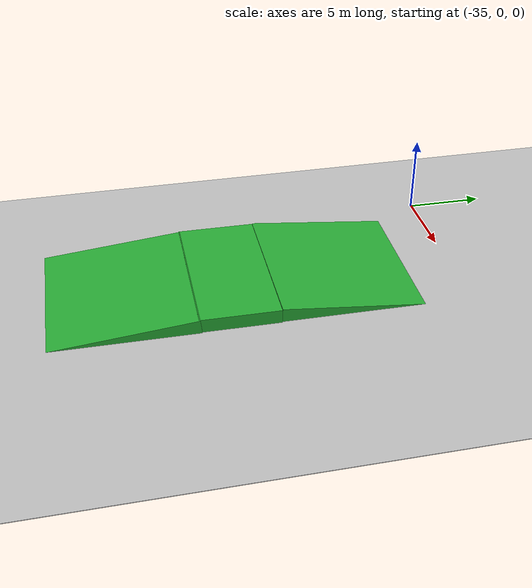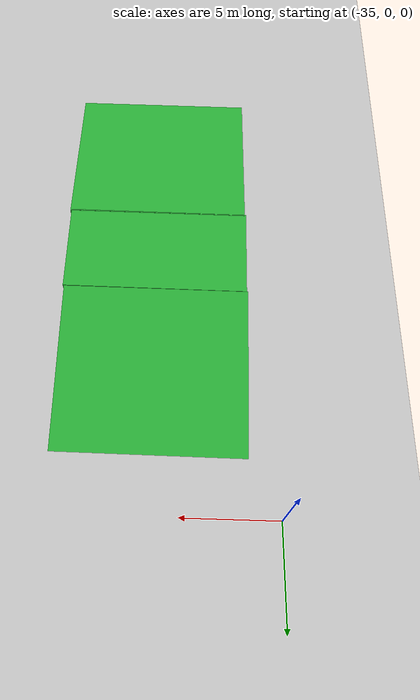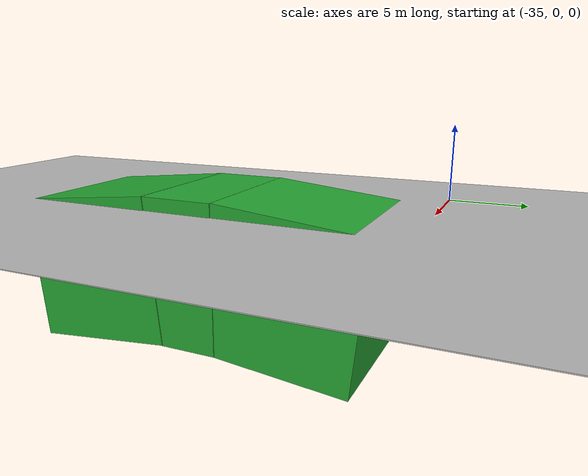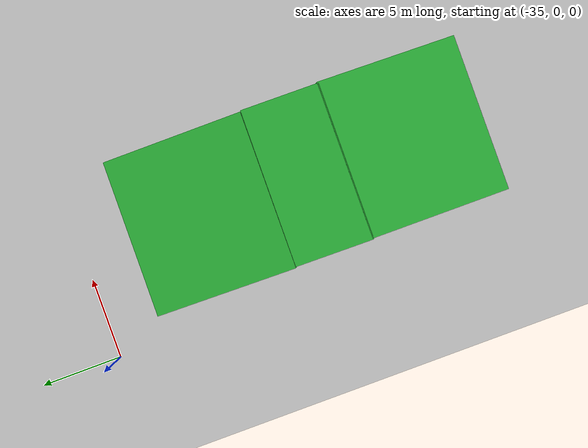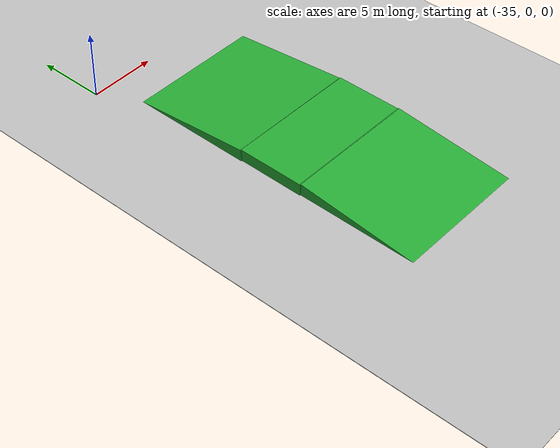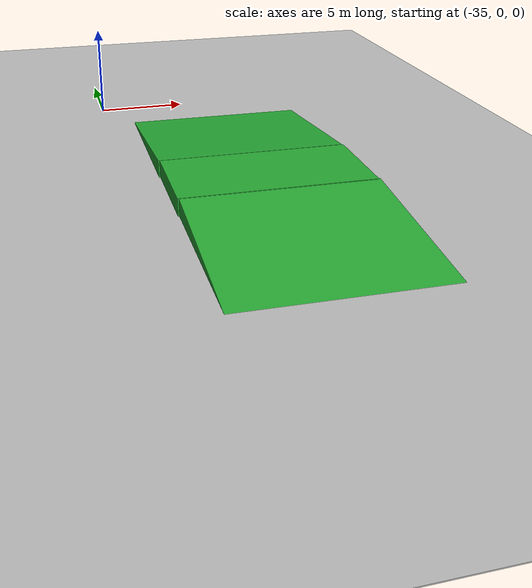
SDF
<sdf version="1.6">
 <world name="default">
  <include><uri>model://sun</uri></include>
  <model name="ground">
   <static>1</static>
   <link name="ground">
    <collision name="ground_coll"><geometry><box><size>83.6 150  0.05</size></box></geometry></collision>
    <visual name="ground_vis">
     <geometry><box><size>83.6 150  0.05</size></box></geometry>
     <material><script><uri>./course.material</uri><name>course</name></script></material>
    </visual>
   </link>
  </model>
  <model name="up_road">
   <pose>-28.5 -7.5 -4.55 0.0 -0.1 -1.58</pose>
   <static>1</static>
   <link name="link">
    <collision name="collision"><geometry><box><size>10 10 10</size></box></geometry></collision>
    <visual name="visual">
     <geometry><box><size>10 10 10</size></box></geometry>
     <material>
      <script><uri>file://media/materials/scripts/gazebo.material</uri><name>Gazebo/Green</name></script>
     </material>
    </visual>
   </link>
  </model>
  <model name="flat_road">
   <pose>-28.5 -14.5 -4.08 0.0 0.0 1.56</pose>
   <static>1</static>
   <link name="link">
    <collision name="collision"><geometry><box><size>5 10 10</size></box></geometry></collision>
    <visual name="visual">
     <geometry><box><size>5 10 10</size></box></geometry>
     <material>
      <script><uri>file://media/materials/scripts/gazebo.material</uri><name>Gazebo/Green</name></script>
     </material>
    </visual>
   </link>
  </model>
  <model name="down_road">
   <pose>-28.5 -21.4 -4.55 0 0.1 -1.58</pose>
   <static>1</static>
   <link name="link">
    <collision name="collision"><geometry><box><size>10 10 10</size></box></geometry></collision>
    <visual name="visual">
     <geometry><box><size>10 10 10</size></box></geometry>
     <material>
      <script><uri>file://media/materials/scripts/gazebo.material</uri><name>Gazebo/Green</name></script>
     </material>
    </visual>
   </link>
  </model>
 </world>
</sdf>
